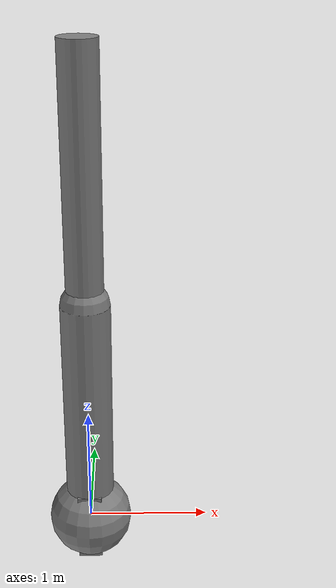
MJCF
<mujoco model="geom_types">
  <compiler coordinate="local" angle="degree"/>
  <worldbody>
    <body name="geom_body">
      <geom
          name="capsule_geom"
          type="capsule"
          size="0.2"
          fromto="0 0 0 0 0 2"
          density="750"
          friction="0.2 0.01 0.001"
          contype="2"
          conaffinity="3"
          margin="0.01"
          gap="0.02"/>
      <geom
          name="cylinder_geom"
          type="cylinder"
          size="0.15"
          fromto="0 0 0 0 0 4"
          density="500"
          friction="0.3 0.02 0.002"
          contype="1"
          conaffinity="1"
          margin="0.015"
          gap="0.025"/>
      <geom
          name="box_geom"
          type="box"
          size="0.1 0.2 0.3"
          density="250"
          friction="0.4 0.03 0.003"
          contype="0"
          conaffinity="0"
          margin="0.02"
          gap="0.03"/>
      <geom
          name="ellipsoid_geom"
          type="ellipsoid"
          size="0.05 0.1 0.15"
          density="1200"
          friction="0.5 0.04 0.004"
          contype="4"
          conaffinity="5"
          margin="0.005"
          gap="0.01"/>
      <geom
          name="sphere_geom"
          type="sphere"
          size="0.35"
          density="900"
          friction="0.6 0.05 0.005"
          contype="6"
          conaffinity="7"
          margin="0.03"
          gap="0.04"/>
    </body>
  </worldbody>
</mujoco>
